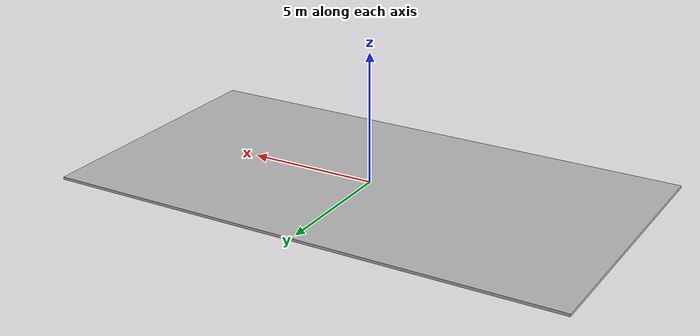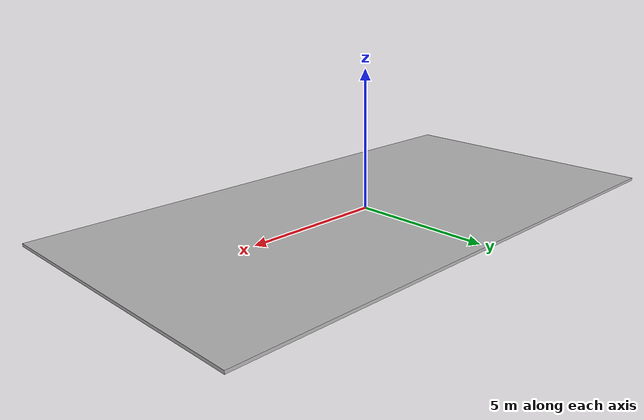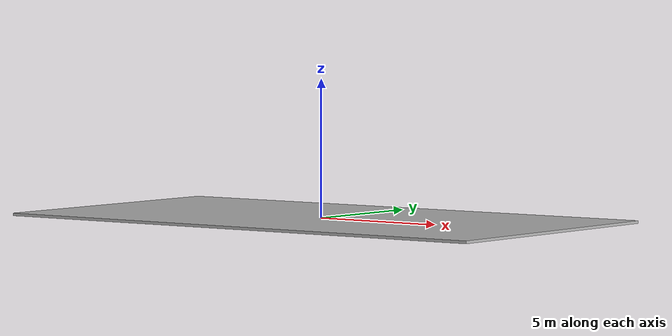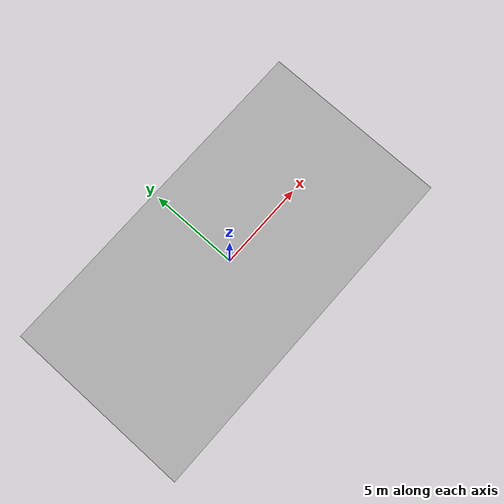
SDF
<?xml version="1.0" ?>
<sdf version="1.5">
  <model name="residential_road">
    <static>true</static>
    <link name="link">
      <collision name="collision">
        <geometry>
          <box>
            <size>20 10.66 .1</size>
          </box>
        </geometry>
      </collision>
      <visual name="visual">
        <cast_shadows>false</cast_shadows>
        <geometry>
          <box>
            <size>20 10.66 .1</size>
          </box>
        </geometry>
        <material>
          <script>
            <uri>model://residential_road/materials/scripts</uri>
            <uri>model://residential_road/materials/textures</uri>
            <name>ResidentialRoad/Diffuse</name>
          </script>
        </material>
      </visual>
    </link>
  </model>
</sdf>
